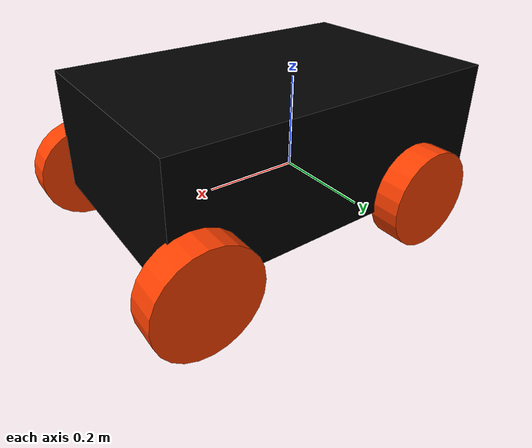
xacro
<?xml version="1.0"?>
<robot xmlns:xacro="http://www.ros.org/wiki/xacro">

    <xacro:include filename="inertial_macros.xacro" />

    <xacro:property name="chassis_length"           value="0.700"/>
    <xacro:property name="chassis_width"            value="0.450"/>
    <xacro:property name="chassis_height"           value="0.250"/>
    <xacro:property name="chassis_mass"             value="19.700"/>

    <xacro:property name="wheel_radius"             value="0.100"/>
    <xacro:property name="wheel_thickness"          value="0.060"/>
    <xacro:property name="wheel_mass"               value="1.500"/>
    <xacro:property name="wheel_offset_x"           value="0.291"/>
    <xacro:property name="wheel_offset_y"           value="0.249"/>
    <xacro:property name="wheel_offset_z"           value="0.020"/>

    <!-- 500 mm wheelbase                                         -->
    <!-- Rear axle = -0.128 m                                     -->
    <!-- Front axle = +0.372 m                                    -->
    <!-- Wheelbase = 0.372 - (-0.128) = 0.500 m                  -->

    <xacro:property name="rear_wheel_x"             value="-0.128"/>
    <xacro:property name="front_wheel_x"            value="0.372"/>

    <!-- Colors -->
    <material name="white">
        <color rgba="1 1 1 1"/>
    </material>

    <material name="black">
        <color rgba="0 0 0 1"/>
    </material>

    <material name="orange">
        <color rgba="1 0.25 0 1"/>
    </material>

    <material name="cyan">
        <color rgba="0 1 1 1"/>
    </material>

    <material name="indigo">
        <color rgba="0.294 0 0.51 1"/>
    </material>

    <!-- convention (except base_link): joint followed by link -->

    <!-- BASE LINK                                                 -->

    <link name="base_link">
    </link>

    <!-- base_footprint -->
    <joint name="base_footprint_joint" type="fixed">
        <parent link="base_link"/>
        <child link="base_footprint"/>
        <origin xyz="0 0 0" rpy="0 0 0"/>
    </joint>

    <link name="base_footprint">
    </link>

    <!-- CHASSIS                                                   -->
    <!-- Keep physical chassis position exactly as Code 1        -->

    <joint name="chasis_joint" type="fixed">
        <parent link="base_link"/>
        <child link="chasis"/>
        <origin xyz="${-wheel_offset_x} 0 ${-wheel_offset_z}"/>
    </joint>

    <link name="chasis">

        <!-- VISUAL: unchanged from Code 1 -->
        <visual>
            <origin xyz="${chassis_length/2} 0 ${chassis_height/2}"
                    rpy="0 0 0"/>
            <geometry>
                <box size="${chassis_length} ${chassis_width} ${chassis_height}"/>
            </geometry>
            <material name="black"/>
        </visual>

        <!-- COLLISION: unchanged from Code 1 -->
        <collision>
            <origin xyz="${chassis_length/2} 0 ${chassis_height/2}"
                    rpy="0 0 0"/>
            <geometry>
                <box size="${chassis_length} ${chassis_width} ${chassis_height}"/>
            </geometry>
        </collision>

        <!-- INERTIAL                                                -->
        <!-- Code 1 COM relative to rear axle: +0.059 m            -->
        <!-- New rear axle: -0.128 m                                -->
        <!-- Therefore COM = -0.128 + 0.059 = -0.069 m             -->
        <!-- Chassis link itself starts at -0.291 m relative to     -->
        <!-- base_link, so local inertial COM must be:              -->

        <xacro:inertial_box
            mass="${chassis_mass}"
            x="${chassis_length}"
            y="${chassis_width}"
            z="${chassis_height}">
            <origin xyz="0.222 0 ${chassis_height/2}"
                    rpy="0 0 0"/>
        </xacro:inertial_box>

    </link>

    <gazebo reference="chasis">
        <material>Gazebo/Black</material>
    </gazebo>

    <!-- REAR LEFT WHEEL                                           -->

    <joint name="left_rear_wheel_joint" type="continuous">
        <parent link="base_link"/>
        <child link="left_rear_wheel"/>
        <origin xyz="${rear_wheel_x} ${wheel_offset_y} 0"
                rpy="${pi/2} 0 0"/>
        <axis xyz="0 0 -1"/>
    </joint>

    <link name="left_rear_wheel">

        <visual>
            <geometry>
                <cylinder radius="${wheel_radius}"
                          length="${wheel_thickness}"/>
            </geometry>
            <material name="orange"/>
        </visual>

        <collision>
            <geometry>
                <sphere radius="${wheel_radius}"/>
            </geometry>
        </collision>

        <xacro:inertial_cylinder
            mass="${wheel_mass}"
            radius="${wheel_radius}"
            length="${wheel_thickness}">
            <origin xyz="0 0 0" rpy="0 0 0"/>
        </xacro:inertial_cylinder>

    </link>

    <gazebo reference="left_rear_wheel">
        <material>Gazebo/Orange</material>
    </gazebo>

    <!-- REAR RIGHT WHEEL                                          -->

    <joint name="right_rear_wheel_joint" type="continuous">
        <parent link="base_link"/>
        <child link="right_rear_wheel"/>
        <origin xyz="${rear_wheel_x} ${-wheel_offset_y} 0"
                rpy="${pi/2} 0 0"/>
        <axis xyz="0 0 -1"/>
    </joint>

    <link name="right_rear_wheel">

        <visual>
            <geometry>
                <cylinder radius="${wheel_radius}"
                          length="${wheel_thickness}"/>
            </geometry>
            <material name="orange"/>
        </visual>

        <collision>
            <geometry>
                <sphere radius="${wheel_radius}"/>
            </geometry>
        </collision>

        <xacro:inertial_cylinder
            mass="${wheel_mass}"
            radius="${wheel_radius}"
            length="${wheel_thickness}">
            <origin xyz="0 0 0" rpy="0 0 0"/>
        </xacro:inertial_cylinder>

    </link>

    <gazebo reference="right_rear_wheel">
        <material>Gazebo/Orange</material>
    </gazebo>

    <!-- FRONT LEFT WHEEL                                          -->

    <joint name="left_front_wheel_joint" type="continuous">
        <parent link="base_link"/>
        <child link="left_front_wheel"/>
        <origin xyz="${front_wheel_x} ${wheel_offset_y} 0"
                rpy="${pi/2} 0 0"/>
        <axis xyz="0 0 -1"/>
    </joint>

    <link name="left_front_wheel">

        <visual>
            <geometry>
                <cylinder radius="${wheel_radius}"
                          length="${wheel_thickness}"/>
            </geometry>
            <material name="orange"/>
        </visual>

        <collision>
            <geometry>
                <sphere radius="${wheel_radius}"/>
            </geometry>
        </collision>

        <xacro:inertial_cylinder
            mass="${wheel_mass}"
            radius="${wheel_radius}"
            length="${wheel_thickness}">
            <origin xyz="0 0 0" rpy="0 0 0"/>
        </xacro:inertial_cylinder>

    </link>

    <gazebo reference="left_front_wheel">
        <material>Gazebo/Orange</material>
    </gazebo>

    <!-- FRONT RIGHT WHEEL                                         -->

    <joint name="right_front_wheel_joint" type="continuous">
        <parent link="base_link"/>
        <child link="right_front_wheel"/>
        <origin xyz="${front_wheel_x} ${-wheel_offset_y} 0"
                rpy="${pi/2} 0 0"/>
        <axis xyz="0 0 -1"/>
    </joint>

    <link name="right_front_wheel">

        <visual>
            <geometry>
                <cylinder radius="${wheel_radius}"
                          length="${wheel_thickness}"/>
            </geometry>
            <material name="orange"/>
        </visual>

        <collision>
            <geometry>
                <sphere radius="${wheel_radius}"/>
            </geometry>
        </collision>

        <xacro:inertial_cylinder
            mass="${wheel_mass}"
            radius="${wheel_radius}"
            length="${wheel_thickness}">
            <origin xyz="0 0 0" rpy="0 0 0"/>
        </xacro:inertial_cylinder>

    </link>

    <gazebo reference="right_front_wheel">
        <material>Gazebo/Orange</material>
    </gazebo>

    <!-- Caster wheel removed -->

</robot>
